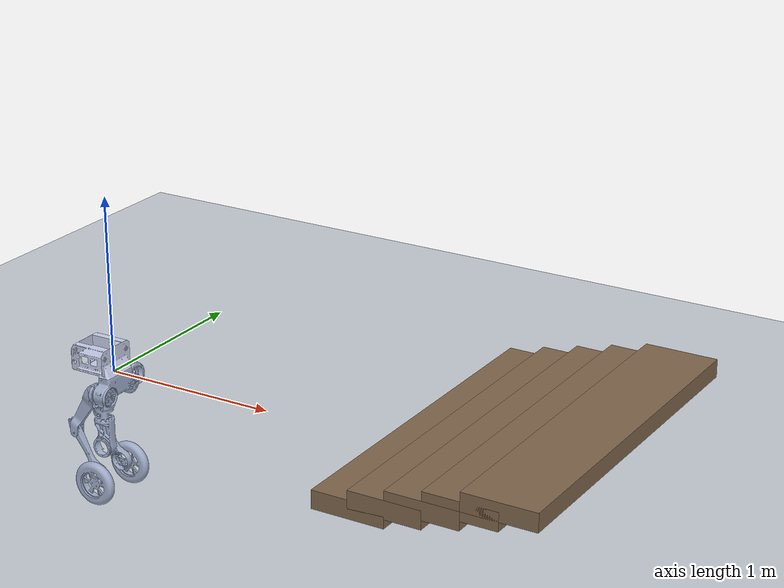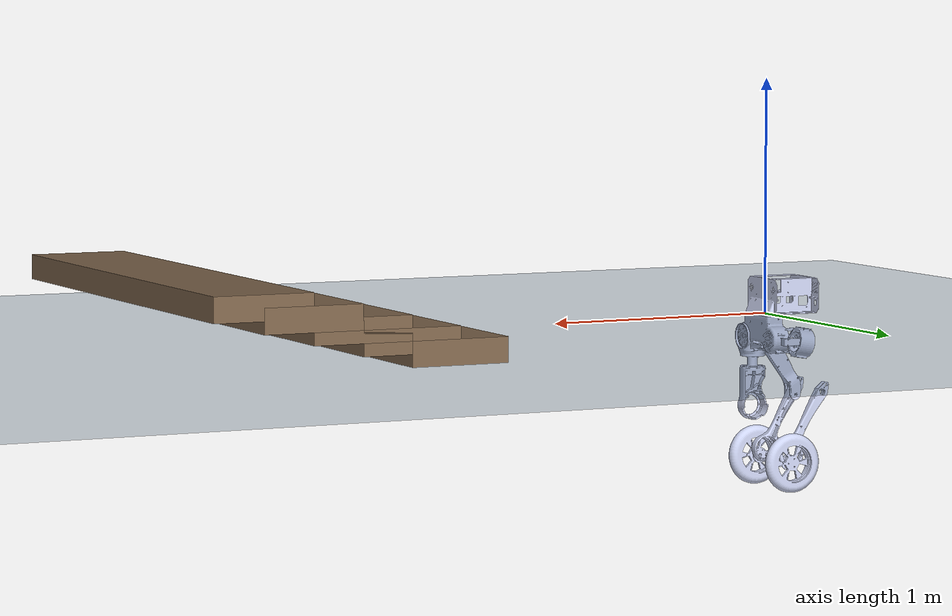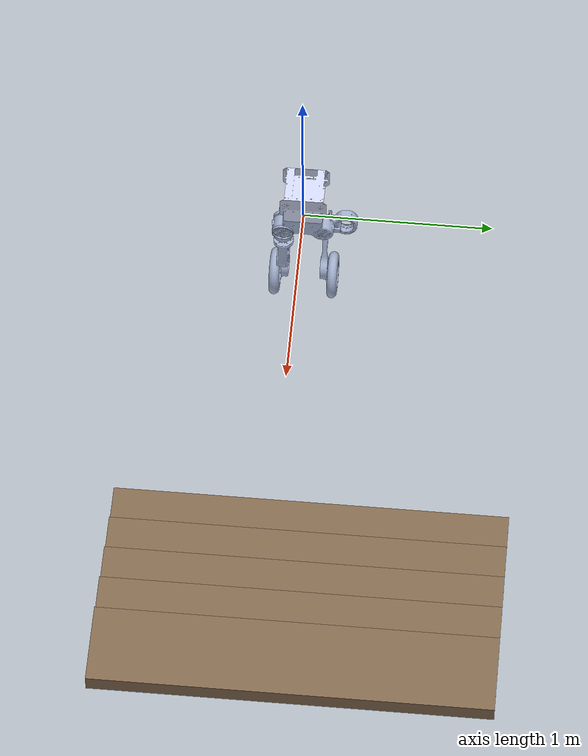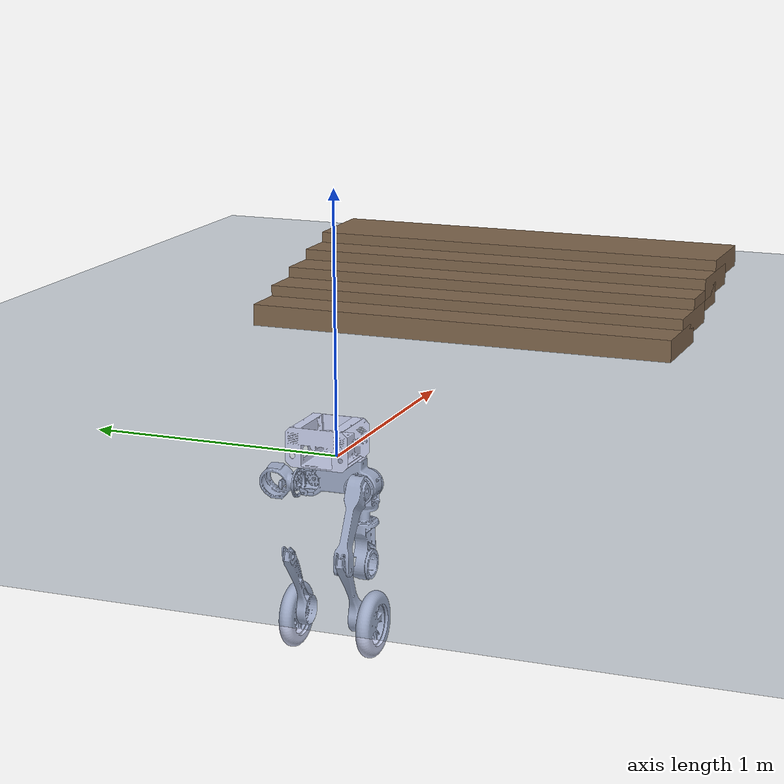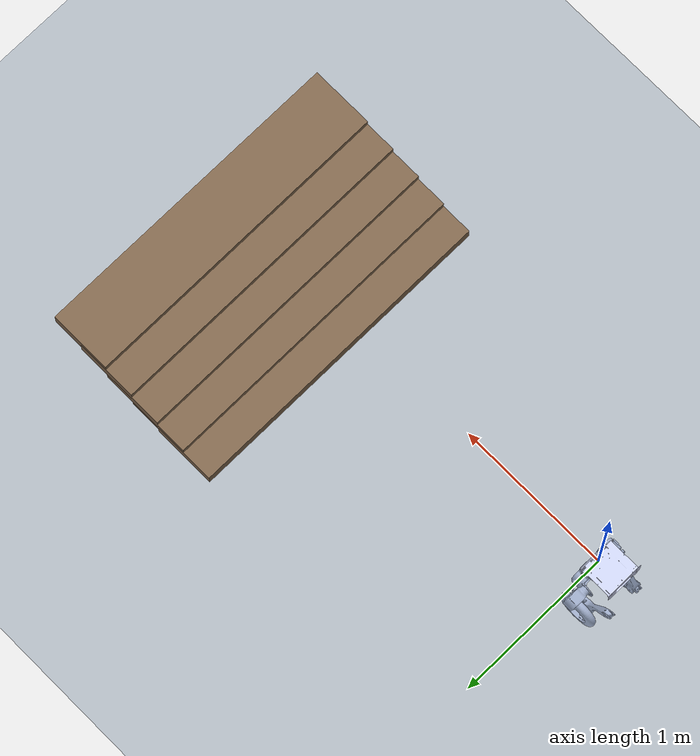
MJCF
<mujoco model="l5aurdf20260209">
  <compiler angle="radian" meshdir="../meshes/"/>
<option timestep="0.005" integrator="RK4">
  </option>
  <default>
    <light castshadow="false" diffuse="1 1 1" />
    <camera fovy="60" />
    <default class="visual">
      <geom contype="0" conaffinity="0" group="1" type="mesh" rgba="0.9 0.9 0.9 1.0" />
    </default>
    <default class="collision">
      <geom contype="1" conaffinity="1" friction="1.0 0.01 0.005" rgba="0.9 0.3 0.4 0" margin="0.001" group="0" />
    </default>
    <joint damping="0.01" armature="0.01" frictionloss="0.5" />
  </default>
  <asset>
    <texture name="gridtex" type="2d" builtin="checker" width="512" height="512" rgb1="0.2 0.3 0.4" rgb2="0.3 0.4 0.5" mark="edge" markrgb="1 1 1"/>
    <material name="grid" texture="gridtex" texrepeat="4 4" reflectance="0.2"/>
    <mesh name="base_link" file="base_link.STL"/>
    <mesh name="left_hip_roll_Link" file="left_hip_roll_Link.STL"/>
    <mesh name="left_hip_pitch_Link" file="left_hip_pitch_Link.STL"/>
    <mesh name="left_knee_Link" file="left_knee_Link.STL"/>
    <mesh name="left_wheel_Link" file="left_wheel_Link.STL"/>
    <mesh name="right_hip_roll_Link" file="right_hip_roll_Link.STL"/>
    <mesh name="right_hip_pitch_Link" file="right_hip_pitch_Link.STL"/>
    <mesh name="right_knee_Link" file="right_knee_Link.STL"/>
    <mesh name="right_wheel_Link" file="right_wheel_Link.STL"/>
  </asset>

  <worldbody>
    <light pos="5 0 30" />
    <geom name="plane" type="plane" size="20 20 .01" material="grid" friction="1.0 0.02 0.01"/>
        <!-- Step 1 -->
    <geom name="step1" type="box"
          size="0.2 1.0 0.05"
          pos="2.0 0.2 0.05"
          rgba="0.5 0.4 0.3 1"/>

    <!-- Step 2 -->
    <geom name="step2" type="box"
          size="0.2 1.0 0.05"
          pos="2.2 0.2 0.10"
          rgba="0.5 0.4 0.3 1"/>

    <!-- Step 3 -->
    <geom name="step3" type="box"
          size="0.2 1.0 0.05"
          pos="2.4 0.2 0.15"
          rgba="0.5 0.4 0.3 1"/>

    <!-- Step 4 -->
    <geom name="step4" type="box"
          size="0.2 1.0 0.05"
          pos="2.6 0.2 0.20"
          rgba="0.5 0.4 0.3 1"/>

    <!-- Step 5 -->
    <geom name="step5" type="box"
          size="0.2 1.0 0.05"
          pos="2.8 0.2 0.25"
          rgba="0.5 0.4 0.3 1"/>

    <body name="base_link">
      <inertial pos="-0.001149 0.000468 0.011577" quat="0.967592 -0.0151463 -0.252049 -0.00264839" mass="8.8261" diaginertia="0.124436 0.0975938 0.0752338"/>
      <joint name="base_joint" type="free" limited="false" actuatorfrclimited="false"/>
      <geom type="mesh" contype="0" conaffinity="0" group="1" density="0" rgba="0.79216 0.81961 0.93333 1" mesh="base_link"/>
      <geom type="mesh" rgba="0.79216 0.81961 0.93333 1" mesh="base_link"/>
      <site name="imu" quat="1 0 0 0" />
      <body name="left_hip_roll_Link" pos="0.032 0.105 -0.105">
        <inertial pos="-0.068519 0.040856 6.9e-05" quat="0.573981 0.575227 0.412213 0.411995" mass="1.0842" diaginertia="0.00209492 0.001682 0.00109408"/>
        <joint name="left_hip_roll_joint" pos="0 0 0" axis="1 0 0" range="-0.384 1.396" actuatorfrcrange="-90 90"/>
        <geom type="mesh" contype="0" conaffinity="0" group="1" density="0" rgba="0.79216 0.81961 0.93333 1" mesh="left_hip_roll_Link"/>
        <geom type="mesh" rgba="0.79216 0.81961 0.93333 1" mesh="left_hip_roll_Link"/>
        <body name="left_hip_pitch_Link" pos="-0.078 0.0335 0">
          <inertial pos="-0.029711 -0.060853 -0.040067" quat="0.931971 0.137626 0.25872 0.213434" mass="1.8134" diaginertia="0.0197904 0.0194234 0.00268819"/>
          <joint name="left_hip_pitch_joint" pos="0 0 0" axis="0 1 0" range="-1.012 1.396" actuatorfrcrange="-90 90"/>
          <geom type="mesh" contype="0" conaffinity="0" group="1" density="0" rgba="0.79216 0.81961 0.93333 1" mesh="left_hip_pitch_Link"/>
          <geom type="mesh" rgba="0.79216 0.81961 0.93333 1" mesh="left_hip_pitch_Link"/>
          <body name="left_knee_Link" pos="-0.1675 -0.0335 -0.2295">
            <inertial pos="0.13664 0.002069 -0.23505" quat="0.68341 -0.180067 -0.181143 0.683896" mass="1.5439" diaginertia="0.019461 0.0187273 0.00123263"/>
            <joint name="left_knee_joint" pos="0 0 0" axis="0 1 0" range="-1.309 0.262" actuatorfrcrange="-130 130"/>
            <geom type="mesh" contype="0" conaffinity="0" group="1" density="0" rgba="0.79216 0.81961 0.93333 1" mesh="left_knee_Link"/>
            <geom type="mesh" rgba="0.79216 0.81961 0.93333 1" mesh="left_knee_Link"/>
            <body name="left_wheel_Link" pos="0.1675 0.0135 -0.29012">
              <inertial pos="2e-06 0.036338 0" quat="0.707107 0 0 0.707107" mass="1.35" diaginertia="0.011283 0.00596 0.00596"/>
              <joint name="left_wheel_joint" pos="0 0 0" axis="0 1 0" range="-1000000 1000000" actuatorfrcrange="-90 90"/>
              <geom type="mesh" contype="0" conaffinity="0" group="1" density="0" rgba="0.79216 0.81961 0.93333 1" mesh="left_wheel_Link"/>
              <geom type="mesh" rgba="0.79216 0.81961 0.93333 1" mesh="left_wheel_Link"/>
            </body>
          </body>
        </body>
      </body>
      <body name="right_hip_roll_Link" pos="0.032 -0.105 -0.105">
        <inertial pos="-0.067979 -0.040554 -6.7e-05" quat="0.408516 0.408399 0.576627 0.577776" mass="1.1148" diaginertia="0.00221022 0.001796 0.00113277"/>
        <joint name="right_hip_roll_joint" pos="0 0 0" axis="-1 0 0" range="-0.384 1.396" actuatorfrcrange="-90 90"/>
        <geom type="mesh" contype="0" conaffinity="0" group="1" density="0" rgba="0.79216 0.81961 0.93333 1" mesh="right_hip_roll_Link"/>
        <geom type="mesh" rgba="0.79216 0.81961 0.93333 1" mesh="right_hip_roll_Link"/>
        <body name="right_hip_pitch_Link" pos="-0.078 -0.0335 0">
          <inertial pos="-0.029441 0.060837 -0.039823" quat="0.9314 -0.138151 0.258663 -0.215641" mass="1.8264" diaginertia="0.0198243 0.0194638 0.00268883"/>
          <joint name="right_hip_pitch_joint" pos="0 0 0" axis="0 1 0" range="-1.012 1.396" actuatorfrcrange="-90 90"/>
          <geom type="mesh" contype="0" conaffinity="0" group="1" density="0" rgba="0.79216 0.81961 0.93333 1" mesh="right_hip_pitch_Link"/>
          <geom type="mesh" rgba="0.79216 0.81961 0.93333 1" mesh="right_hip_pitch_Link"/>
          <body name="right_knee_Link" pos="-0.1675 0.0335 -0.2295">
            <inertial pos="0.14279 -0.002434 -0.24622" quat="0.684395 -0.184481 -0.178469 0.682436" mass="1.2578" diaginertia="0.0149881 0.0144771 0.00103881"/>
            <joint name="right_knee_joint" pos="0 0 0" axis="0 1 0" range="-1.309 0.262" actuatorfrcrange="-130 130"/>
            <geom type="mesh" contype="0" conaffinity="0" group="1" density="0" rgba="0.79216 0.81961 0.93333 1" mesh="right_knee_Link"/>
            <geom type="mesh" rgba="0.79216 0.81961 0.93333 1" mesh="right_knee_Link"/>
            <body name="right_wheel_Link" pos="0.1675 -0.0135 -0.29012">
              <inertial pos="0 -0.036338 2e-06" quat="0.707107 0 0 0.707107" mass="1.35" diaginertia="0.011283 0.00596 0.00596"/>
              <joint name="right_wheel_joint" pos="0 0 0" axis="0 1 0" range="-1000000 1000000" actuatorfrcrange="-90 90"/>
              <geom type="mesh" contype="0" conaffinity="0" group="1" density="0" rgba="0.79216 0.81961 0.93333 1" mesh="right_wheel_Link"/>
              <geom type="mesh" rgba="0.79216 0.81961 0.93333 1" mesh="right_wheel_Link"/>
            </body>
          </body>
        </body>
      </body>
    </body>
  </worldbody>

 <actuator>
    <motor joint="left_hip_roll_joint" name="left_hip_roll_joint" ctrllimited="true" ctrlrange="-200 200" />
    <motor joint="left_hip_pitch_joint" name="left_hip_pitch_joint" ctrllimited="true" ctrlrange="-200 200" />
    <motor joint="left_knee_joint" name="left_knee_joint" ctrllimited="true" ctrlrange="-200 200" />
    <motor joint="left_wheel_joint" name="left_wheel_joint" ctrllimited="true" ctrlrange="-200 200" />
    <motor joint="right_hip_roll_joint" name="right_hip_roll_joint" ctrllimited="true" ctrlrange="-200 200" />
    <motor joint="right_hip_pitch_joint" name="right_hip_pitch_joint" ctrllimited="true" ctrlrange="-200 200" />
    <motor joint="right_knee_joint" name="right_knee_joint" ctrllimited="true" ctrlrange="-200 200" />
    <motor joint="right_wheel_joint" name="right_wheel_joint" ctrllimited="true" ctrlrange="-200 200" />
  </actuator>

   <sensor>
    <actuatorpos name="left_hip_roll_joint_p" actuator="left_hip_roll_joint" />
    <actuatorvel name="left_hip_roll_joint_v" actuator="left_hip_roll_joint" />
    <actuatorfrc name="left_hip_roll_joint_f" actuator="left_hip_roll_joint" noise="0.001" />
    <actuatorpos name="left_hip_pitch_joint_p" actuator="left_hip_pitch_joint" />
    <actuatorvel name="left_hip_pitch_joint_v" actuator="left_hip_pitch_joint" />
    <actuatorfrc name="left_hip_pitch_joint_f" actuator="left_hip_pitch_joint" noise="0.001" />
    <actuatorpos name="left_knee_joint_p" actuator="left_knee_joint" />
    <actuatorvel name="left_knee_joint_v" actuator="left_knee_joint" />
    <actuatorfrc name="left_knee_joint_f" actuator="left_knee_joint" noise="0.001" />
    <actuatorpos name="left_wheel_joint_p" actuator="left_wheel_joint" />
    <actuatorvel name="left_wheel_joint_v" actuator="left_wheel_joint" />
    <actuatorfrc name="left_wheel_joint_f" actuator="left_wheel_joint" noise="0.001" />
    <actuatorpos name="right_hip_roll_joint_p" actuator="right_hip_roll_joint" />
    <actuatorvel name="right_hip_roll_joint_v" actuator="right_hip_roll_joint" />
    <actuatorfrc name="right_hip_roll_joint_f" actuator="right_hip_roll_joint" noise="0.001" />
    <actuatorpos name="right_hip_pitch_joint_p" actuator="right_hip_pitch_joint" />
    <actuatorvel name="right_hip_pitch_joint_v" actuator="right_hip_pitch_joint" />
    <actuatorfrc name="right_hip_pitch_joint_f" actuator="right_hip_pitch_joint" noise="0.001" />
    <actuatorpos name="right_knee_joint_p" actuator="right_knee_joint" />
    <actuatorvel name="right_knee_joint_v" actuator="right_knee_joint" />
    <actuatorfrc name="right_knee_joint_f" actuator="right_knee_joint" noise="0.001" />
    <actuatorpos name="right_wheel_joint_p" actuator="right_wheel_joint" />
    <actuatorvel name="right_wheel_joint_v" actuator="right_wheel_joint" />
    <actuatorfrc name="right_wheel_joint_f" actuator="right_wheel_joint" noise="0.001" />

    <framequat name='orientation' objtype='site' noise='0.001' objname='imu'/>
    <framepos name='position' objtype='site' noise='0.001' objname='imu'/>
    <gyro name='angular-velocity' site='imu' noise='0.005' cutoff='34.9'/>
    <velocimeter name='linear-velocity' site='imu' noise='0.001' cutoff='30'/>
    <accelerometer name='linear-acceleration' site='imu' noise='0.005' cutoff='157'/>
    <magnetometer name='magnetometer' site='imu'/>
  </sensor>

  <contact>
    <exclude body1="base_link" body2="left_hip_roll_Link" />
    <exclude body1="base_link" body2="left_hip_pitch_Link" />
    <exclude body1="base_link" body2="right_hip_roll_Link" />
    <exclude body1="base_link" body2="right_hip_pitch_Link" />
  </contact>

  <keyframe>
    <!--两轮平衡和步态-->
    <key time="0" qpos="0 0 0.651 1 0 0 0
    0 0.261799 -0.508606 0
    0 0.261799 -0.508606 0" />
  </keyframe>

</mujoco>
